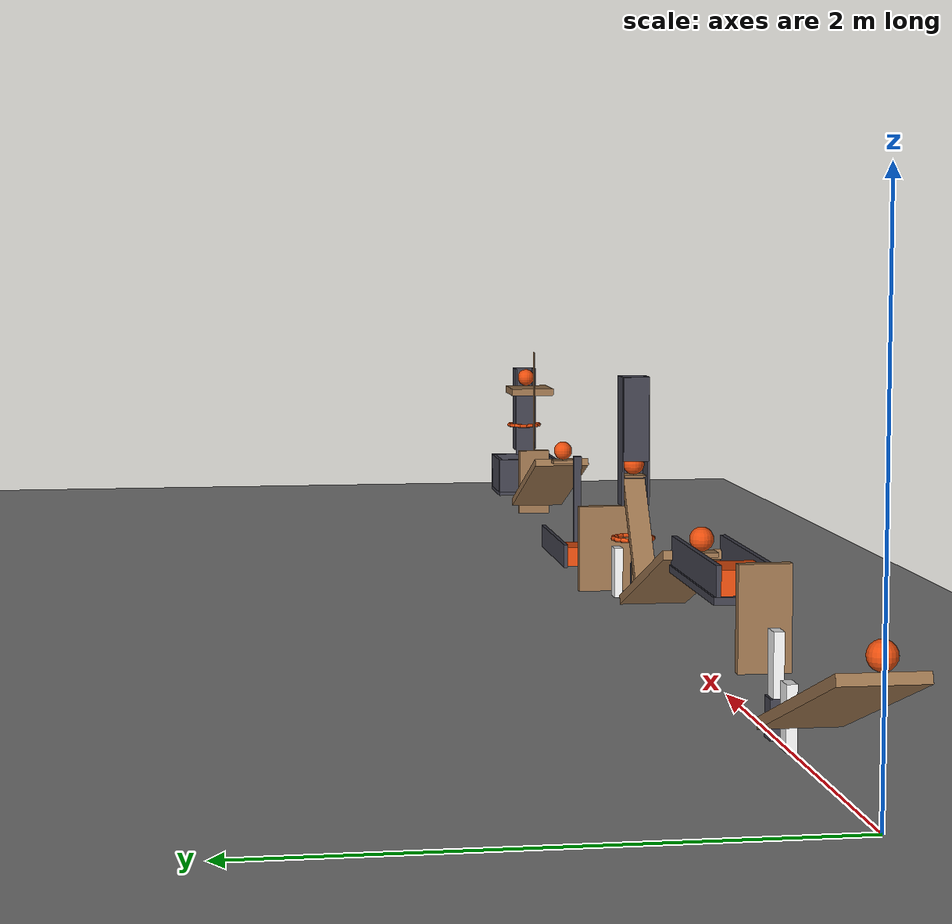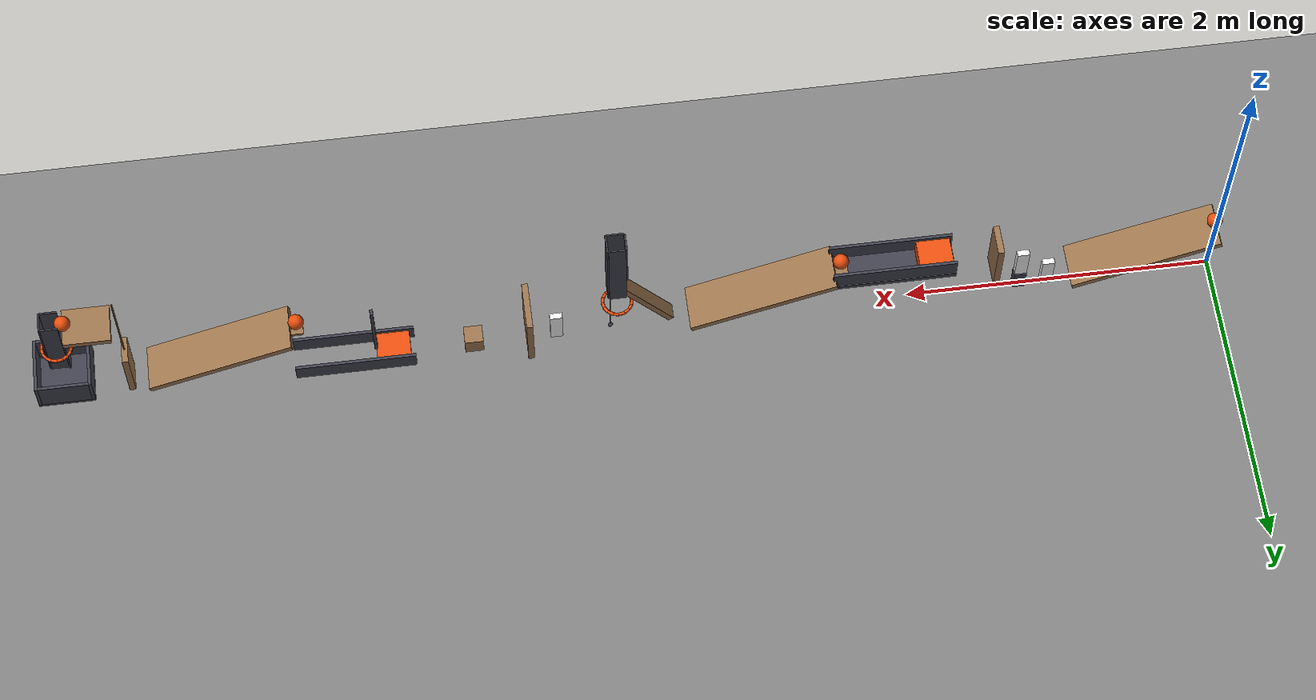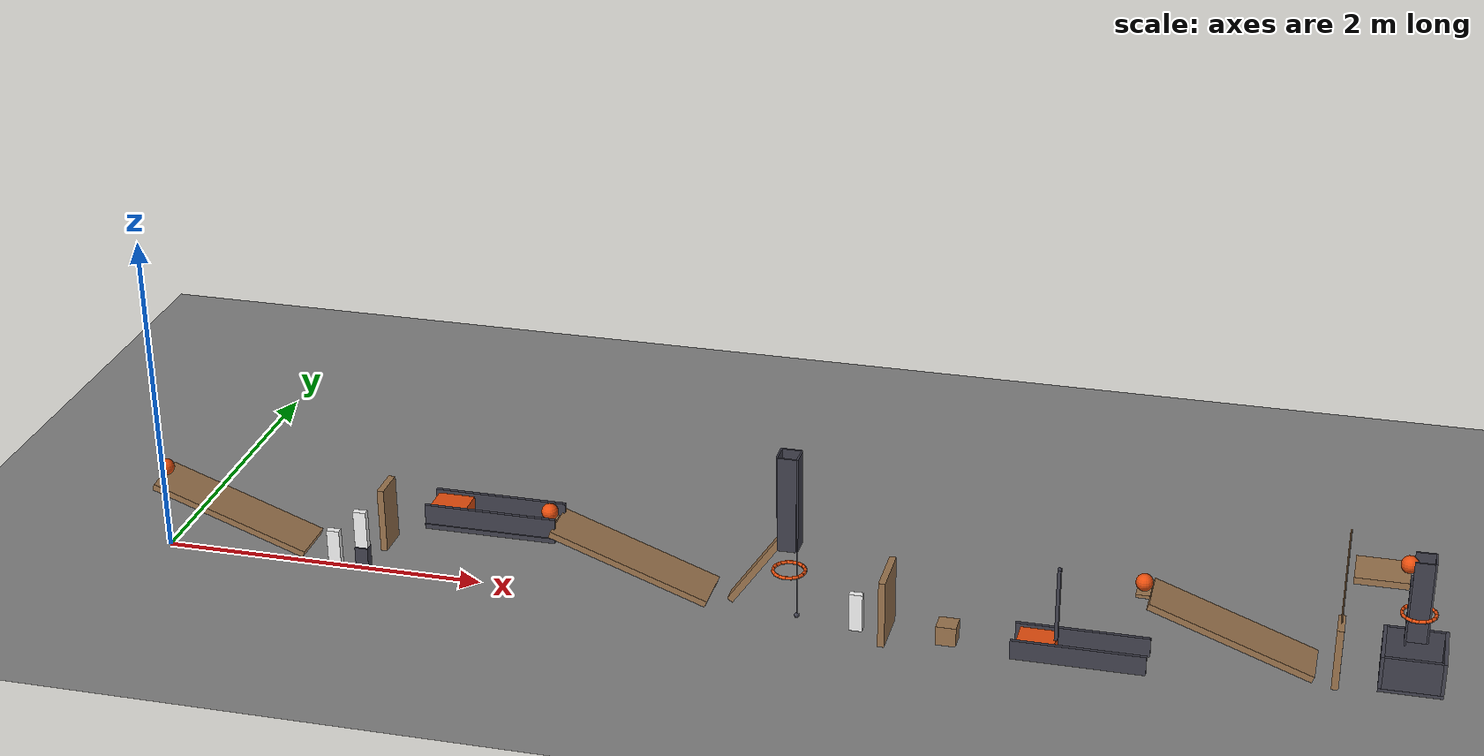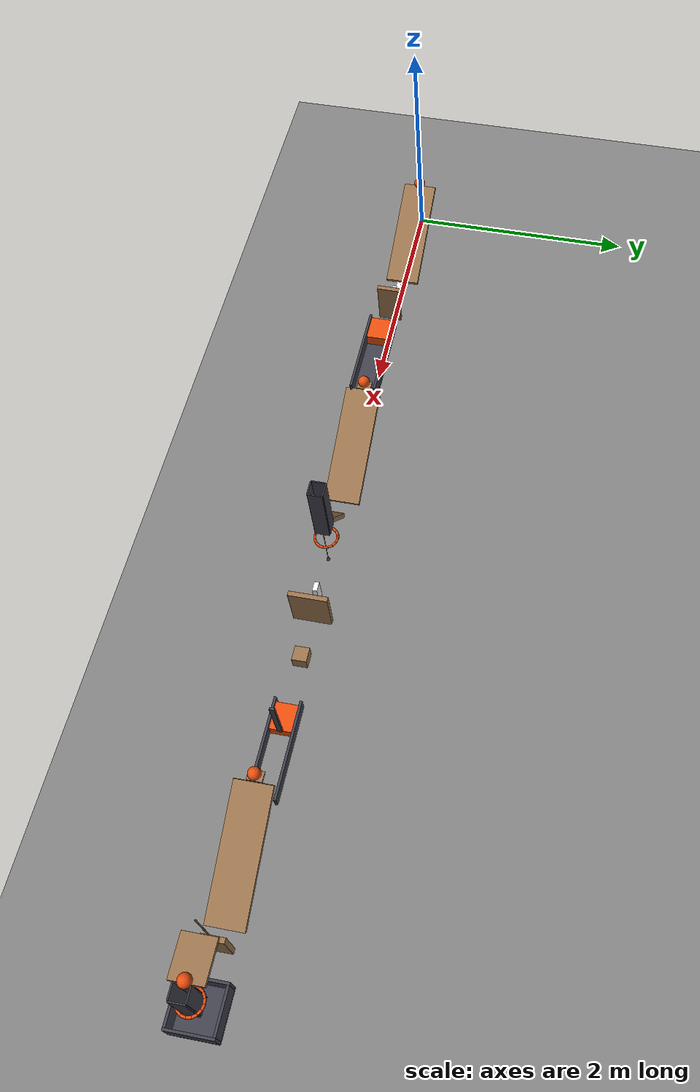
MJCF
<mujoco model="gravity_chain_with_guided_carts">
  <compiler angle="radian"/>
  <option timestep="0.002"/>
  <worldbody>
    <geom name="floor" type="plane" size="20 20 0.1" friction="0.7 0 0"/>
    <body name="ramp1">
      <geom name="ramp1" type="box" pos="0.469847 0 0.302216" size="0.5 0.15 0.02" euler="0 0.349066 0" friction="0.7 0 0" solref="0.01 1" rgba="0.6 0.45 0.3 1"/>
    </body>
    <body name="ball1" pos="0.0239414 0 0.539004">
      <freejoint/>
      <geom name="ball1" type="sphere" pos="0 0 0" size="0.05" mass="0.2" condim="6" friction="0.7 0 0" solref="0.01 1" rgba="0.9 0.3 0.05 1"/>
    </body>
    <body name="domino1" pos="1.07969 0 0.12">
      <freejoint/>
      <geom name="domino1" type="box" pos="0 0 0" size="0.04 0.02 0.12" mass="0.25" friction="0.7 0 0" solref="0.01 1" rgba="0.95 0.95 0.95 1"/>
    </body>
    <body name="domino2 support">
      <geom name="domino2 support" type="box" pos="1.25969 0 0.075" size="0.04 0.03 0.075" friction="0.7 0 0" solref="0.01 1" rgba="0.25 0.25 0.3 1"/>
    </body>
    <body name="domino2" pos="1.25969 0 0.27">
      <freejoint/>
      <geom name="domino2" type="box" pos="0 0 0" size="0.04 0.02 0.12" mass="0.25" friction="0.7 0 0" solref="0.01 1" rgba="0.95 0.95 0.95 1"/>
    </body>
    <body name="flap1" pos="1.43969 0 0.2">
      <joint name="flap1_hinge" type="hinge" pos="0 0 0" axis="0 1 0" limited="true" range="0 1.13446" damping="0.04"/>
      <geom name="flap1" type="box" pos="0 0 0.2" size="0.02 0.1 0.2" mass="0.3" friction="0.7 0 0" solref="0.01 1" rgba="0.6 0.45 0.3 1"/>
    </body>
    <body name="cart1 track">
      <geom name="cart1 track" type="box" pos="2.12 0 0.415" size="0.4 0.12 0.015" friction="0.7 0 0" solref="0.01 1" rgba="0.25 0.25 0.3 1"/>
    </body>
    <body name="cart1 left guide">
      <geom name="cart1 left guide" type="box" pos="2.12 0.102 0.49" size="0.4 0.01 0.06" friction="0.7 0 0" solref="0.01 1" rgba="0.25 0.25 0.3 1"/>
    </body>
    <body name="cart1 right guide">
      <geom name="cart1 right guide" type="box" pos="2.12 -0.102 0.49" size="0.4 0.01 0.06" friction="0.7 0 0" solref="0.01 1" rgba="0.25 0.25 0.3 1"/>
    </body>
    <body name="cart1" pos="1.85 0 0.48">
      <freejoint/>
      <geom name="cart1" type="box" pos="0 0 0" size="0.11 0.09 0.05" mass="0.5" friction="0.7 0 0" solref="0.01 1" rgba="0.9 0.3 0.05 1"/>
    </body>
    <body name="ramp2">
      <geom name="ramp2" type="box" pos="2.96838 0 0.302216" size="0.5 0.15 0.02" euler="0 0.349066 0" friction="0.7 0 0" solref="0.01 1" rgba="0.6 0.45 0.3 1"/>
    </body>
    <body name="ball2 starting pad">
      <geom name="ball2 starting pad" type="box" pos="2.45853 0 0.48202" size="0.04 0.06 0.01" friction="0.7 0 0" solref="0.01 1" rgba="0.6 0.45 0.3 1"/>
    </body>
    <body name="ball2" pos="2.45853 0 0.54202">
      <freejoint/>
      <geom name="ball2" type="sphere" pos="0 0 0" size="0.05" mass="0.2" condim="6" friction="0.7 0 0" solref="0.01 1" rgba="0.9 0.3 0.05 1"/>
    </body>
    <body name="lever1" pos="3.7303 0 0.365746">
      <joint name="lever1_hinge" type="hinge" pos="0 0 0" axis="0 1 0" limited="true" range="-0.785398 0" damping="0.04"/>
      <geom name="lever1" type="box" pos="0 0 -5e-07" size="0.3 0.05 0.02" euler="0 -0.959931 0" mass="0.499" friction="0.7 0 0" solref="0.01 1" rgba="0.6 0.45 0.3 1"/>
      <geom name="lever1 scoop" type="box" pos="0.172073 0 0.270745" size="0.045 0.05 0.005" mass="0.001" friction="0.7 0 0" solref="0.01 1" rgba="0.6 0.45 0.3 1"/>
    </body>
    <body name="ball3" pos="3.90237 0 0.691491">
      <freejoint/>
      <geom name="ball3" type="sphere" pos="0 0 0" size="0.05" mass="0.2" condim="6" friction="0.7 0 0" solref="0.01 1" rgba="0.9 0.3 0.05 1"/>
    </body>
    <body name="ball3 rear guide">
      <geom name="ball3 rear guide" type="box" pos="3.84237 0 0.905" size="0.005 0.06 0.195" friction="0.7 0 0" solref="0.01 1" rgba="0.25 0.25 0.3 1"/>
    </body>
    <body name="ball3 front guide">
      <geom name="ball3 front guide" type="box" pos="3.96237 0 0.8" size="0.005 0.06 0.3" friction="0.7 0 0" solref="0.01 1" rgba="0.25 0.25 0.3 1"/>
    </body>
    <body name="ball3 left guide">
      <geom name="ball3 left guide" type="box" pos="3.90237 0.06 0.8" size="0.055 0.005 0.3" friction="0.7 0 0" solref="0.01 1" rgba="0.25 0.25 0.3 1"/>
    </body>
    <body name="ball3 right guide">
      <geom name="ball3 right guide" type="box" pos="3.90237 -0.06 0.8" size="0.055 0.005 0.3" friction="0.7 0 0" solref="0.01 1" rgba="0.25 0.25 0.3 1"/>
    </body>
    <body name="ring1">
      <geom name="ring1_00" type="capsule" size="0.01" fromto="3.99737 0 0.341491 3.99014 0.0363549 0.341491" friction="0.7 0 0" solref="0.01 1" rgba="0.9 0.3 0.05 1"/>
      <geom name="ring1_01" type="capsule" size="0.01" fromto="3.99014 0.0363549 0.341491 3.96955 0.0671751 0.341491" friction="0.7 0 0" solref="0.01 1" rgba="0.9 0.3 0.05 1"/>
      <geom name="ring1_02" type="capsule" size="0.01" fromto="3.96955 0.0671751 0.341491 3.93873 0.0877686 0.341491" friction="0.7 0 0" solref="0.01 1" rgba="0.9 0.3 0.05 1"/>
      <geom name="ring1_03" type="capsule" size="0.01" fromto="3.93873 0.0877686 0.341491 3.90237 0.095 0.341491" friction="0.7 0 0" solref="0.01 1" rgba="0.9 0.3 0.05 1"/>
      <geom name="ring1_04" type="capsule" size="0.01" fromto="3.90237 0.095 0.341491 3.86602 0.0877686 0.341491" friction="0.7 0 0" solref="0.01 1" rgba="0.9 0.3 0.05 1"/>
      <geom name="ring1_05" type="capsule" size="0.01" fromto="3.86602 0.0877686 0.341491 3.8352 0.0671751 0.341491" friction="0.7 0 0" solref="0.01 1" rgba="0.9 0.3 0.05 1"/>
      <geom name="ring1_06" type="capsule" size="0.01" fromto="3.8352 0.0671751 0.341491 3.81461 0.0363549 0.341491" friction="0.7 0 0" solref="0.01 1" rgba="0.9 0.3 0.05 1"/>
      <geom name="ring1_07" type="capsule" size="0.01" fromto="3.81461 0.0363549 0.341491 3.80737 1.16341e-17 0.341491" friction="0.7 0 0" solref="0.01 1" rgba="0.9 0.3 0.05 1"/>
      <geom name="ring1_08" type="capsule" size="0.01" fromto="3.80737 1.16341e-17 0.341491 3.81461 -0.0363549 0.341491" friction="0.7 0 0" solref="0.01 1" rgba="0.9 0.3 0.05 1"/>
      <geom name="ring1_09" type="capsule" size="0.01" fromto="3.81461 -0.0363549 0.341491 3.8352 -0.0671751 0.341491" friction="0.7 0 0" solref="0.01 1" rgba="0.9 0.3 0.05 1"/>
      <geom name="ring1_10" type="capsule" size="0.01" fromto="3.8352 -0.0671751 0.341491 3.86602 -0.0877686 0.341491" friction="0.7 0 0" solref="0.01 1" rgba="0.9 0.3 0.05 1"/>
      <geom name="ring1_11" type="capsule" size="0.01" fromto="3.86602 -0.0877686 0.341491 3.90237 -0.095 0.341491" friction="0.7 0 0" solref="0.01 1" rgba="0.9 0.3 0.05 1"/>
      <geom name="ring1_12" type="capsule" size="0.01" fromto="3.90237 -0.095 0.341491 3.93873 -0.0877686 0.341491" friction="0.7 0 0" solref="0.01 1" rgba="0.9 0.3 0.05 1"/>
      <geom name="ring1_13" type="capsule" size="0.01" fromto="3.93873 -0.0877686 0.341491 3.96955 -0.0671751 0.341491" friction="0.7 0 0" solref="0.01 1" rgba="0.9 0.3 0.05 1"/>
      <geom name="ring1_14" type="capsule" size="0.01" fromto="3.96955 -0.0671751 0.341491 3.99014 -0.0363549 0.341491" friction="0.7 0 0" solref="0.01 1" rgba="0.9 0.3 0.05 1"/>
      <geom name="ring1_15" type="capsule" size="0.01" fromto="3.99014 -0.0363549 0.341491 3.99737 -2.32683e-17 0.341491" friction="0.7 0 0" solref="0.01 1" rgba="0.9 0.3 0.05 1"/>
    </body>
    <body name="pendulum1" pos="3.94834 0 0.545529">
      <joint name="pendulum_hinge" type="hinge" pos="0 0 0" axis="0 1 0" limited="true" range="-0.698132 0" damping="0.04"/>
      <geom name="pendulum1_bob" type="sphere" pos="0 0 -0.5" size="0.015" mass="0.34" friction="0.7 0 0" solref="0.01 1" rgba="0.25 0.25 0.3 1"/>
      <geom name="pendulum1_rod" type="capsule" size="0.0025" fromto="0 0 0 0 0 -0.485" mass="0.01" friction="0.7 0 0" solref="0.01 1" rgba="0.25 0.25 0.3 1"/>
    </body>
    <body name="domino3" pos="4.30193 0 0.12">
      <freejoint/>
      <geom name="domino3" type="box" pos="0 0 0" size="0.04 0.02 0.12" mass="0.25" friction="0.7 0 0" solref="0.01 1" rgba="0.95 0.95 0.95 1"/>
    </body>
    <body name="door1" pos="4.48193 0 0">
      <joint name="door1_hinge" type="hinge" pos="0 0 0" axis="0 1 0" limited="true" range="0 1.22173" damping="0.04"/>
      <geom name="door1" type="box" pos="0 0 0.21" size="0.02 0.16 0.21" mass="0.45" friction="0.7 0 0" solref="0.01 1" rgba="0.6 0.45 0.3 1"/>
    </body>
    <body name="block1" pos="4.84193 0 0.06">
      <freejoint/>
      <geom name="block1" type="box" pos="0 0 0" size="0.06 0.06 0.06" mass="0.35" friction="0.7 0 0" solref="0.01 1" rgba="0.6 0.45 0.3 1"/>
    </body>
    <body name="cart2 left guide">
      <geom name="cart2 left guide" type="box" pos="5.61193 0.102 0.06" size="0.39 0.01 0.06" friction="0.7 0 0" solref="0.01 1" rgba="0.25 0.25 0.3 1"/>
    </body>
    <body name="cart2 right guide">
      <geom name="cart2 right guide" type="box" pos="5.61193 -0.102 0.06" size="0.39 0.01 0.06" friction="0.7 0 0" solref="0.01 1" rgba="0.25 0.25 0.3 1"/>
    </body>
    <body name="cart2" pos="5.36193 0 0.05">
      <freejoint/>
      <geom name="cart2" type="box" pos="0 0 0" size="0.11 0.09 0.05" mass="0.499" friction="0.7 0 0" solref="0.01 1" rgba="0.9 0.3 0.05 1"/>
      <geom name="cart2 pusher" type="box" pos="0.11 0 0.28" size="0.01 0.02 0.23" mass="0.001" friction="0.7 0 0" solref="0.01 1" rgba="0.25 0.25 0.3 1"/>
    </body>
    <body name="ramp3">
      <geom name="ramp3" type="box" pos="6.46178 0 0.302216" size="0.5 0.15 0.02" euler="0 0.349066 0" friction="0.7 0 0" solref="0.01 1" rgba="0.6 0.45 0.3 1"/>
    </body>
    <body name="ball4 starting pad">
      <geom name="ball4 starting pad" type="box" pos="5.95193 0 0.48202" size="0.04 0.06 0.01" friction="0.7 0 0" solref="0.01 1" rgba="0.6 0.45 0.3 1"/>
    </body>
    <body name="ball4" pos="5.95193 0 0.54202">
      <freejoint/>
      <geom name="ball4" type="sphere" pos="0 0 0" size="0.05" mass="0.2" condim="6" friction="0.7 0 0" solref="0.01 1" rgba="0.9 0.3 0.05 1"/>
    </body>
    <body name="flap2" pos="7.05163 0 0.05">
      <joint name="flap2_hinge" type="hinge" pos="0 0 0" axis="0 1 0" limited="true" range="0 1.0472" damping="0.04"/>
      <geom name="flap2" type="box" pos="0 0 0.19" size="0.02 0.09 0.19" mass="0.278" friction="0.7 0 0" solref="0.01 1" rgba="0.6 0.45 0.3 1"/>
      <geom name="flap2 striker" type="capsule" size="0.005" fromto="0 0 0.38 0 0 0.97" mass="0.002" friction="0.7 0 0" solref="0.01 1" rgba="0.6 0.45 0.3 1"/>
    </body>
    <body name="shelf1">
      <geom name="shelf1" type="box" pos="7.24163 0 0.78" size="0.15 0.125 0.02" friction="0.7 0 0" solref="0.01 1" rgba="0.6 0.45 0.3 1"/>
    </body>
    <body name="ball5" pos="7.38163 0 0.85">
      <freejoint/>
      <geom name="ball5" type="sphere" pos="0 0 0" size="0.05" mass="0.2" condim="6" friction="0.7 0 0" solref="0.01 1" rgba="0.9 0.3 0.05 1"/>
    </body>
    <body name="ball5 front guide">
      <geom name="ball5 front guide" type="box" pos="7.52163 0 0.65" size="0.005 0.06 0.25" friction="0.7 0 0" solref="0.01 1" rgba="0.25 0.25 0.3 1"/>
    </body>
    <body name="ball5 rear guide">
      <geom name="ball5 rear guide" type="box" pos="7.40163 0 0.56" size="0.005 0.06 0.19" friction="0.7 0 0" solref="0.01 1" rgba="0.25 0.25 0.3 1"/>
    </body>
    <body name="ball5 left guide">
      <geom name="ball5 left guide" type="box" pos="7.46163 0.06 0.65" size="0.055 0.005 0.25" friction="0.7 0 0" solref="0.01 1" rgba="0.25 0.25 0.3 1"/>
    </body>
    <body name="ball5 right guide">
      <geom name="ball5 right guide" type="box" pos="7.46163 -0.06 0.65" size="0.055 0.005 0.25" friction="0.7 0 0" solref="0.01 1" rgba="0.25 0.25 0.3 1"/>
    </body>
    <body name="ring2">
      <geom name="ring2_00" type="capsule" size="0.01" fromto="7.55663 0 0.55 7.5494 0.0363549 0.55" friction="0.7 0 0" solref="0.01 1" rgba="0.9 0.3 0.05 1"/>
      <geom name="ring2_01" type="capsule" size="0.01" fromto="7.5494 0.0363549 0.55 7.5288 0.0671751 0.55" friction="0.7 0 0" solref="0.01 1" rgba="0.9 0.3 0.05 1"/>
      <geom name="ring2_02" type="capsule" size="0.01" fromto="7.5288 0.0671751 0.55 7.49798 0.0877686 0.55" friction="0.7 0 0" solref="0.01 1" rgba="0.9 0.3 0.05 1"/>
      <geom name="ring2_03" type="capsule" size="0.01" fromto="7.49798 0.0877686 0.55 7.46163 0.095 0.55" friction="0.7 0 0" solref="0.01 1" rgba="0.9 0.3 0.05 1"/>
      <geom name="ring2_04" type="capsule" size="0.01" fromto="7.46163 0.095 0.55 7.42527 0.0877686 0.55" friction="0.7 0 0" solref="0.01 1" rgba="0.9 0.3 0.05 1"/>
      <geom name="ring2_05" type="capsule" size="0.01" fromto="7.42527 0.0877686 0.55 7.39445 0.0671751 0.55" friction="0.7 0 0" solref="0.01 1" rgba="0.9 0.3 0.05 1"/>
      <geom name="ring2_06" type="capsule" size="0.01" fromto="7.39445 0.0671751 0.55 7.37386 0.0363549 0.55" friction="0.7 0 0" solref="0.01 1" rgba="0.9 0.3 0.05 1"/>
      <geom name="ring2_07" type="capsule" size="0.01" fromto="7.37386 0.0363549 0.55 7.36663 1.16341e-17 0.55" friction="0.7 0 0" solref="0.01 1" rgba="0.9 0.3 0.05 1"/>
      <geom name="ring2_08" type="capsule" size="0.01" fromto="7.36663 1.16341e-17 0.55 7.37386 -0.0363549 0.55" friction="0.7 0 0" solref="0.01 1" rgba="0.9 0.3 0.05 1"/>
      <geom name="ring2_09" type="capsule" size="0.01" fromto="7.37386 -0.0363549 0.55 7.39445 -0.0671751 0.55" friction="0.7 0 0" solref="0.01 1" rgba="0.9 0.3 0.05 1"/>
      <geom name="ring2_10" type="capsule" size="0.01" fromto="7.39445 -0.0671751 0.55 7.42527 -0.0877686 0.55" friction="0.7 0 0" solref="0.01 1" rgba="0.9 0.3 0.05 1"/>
      <geom name="ring2_11" type="capsule" size="0.01" fromto="7.42527 -0.0877686 0.55 7.46163 -0.095 0.55" friction="0.7 0 0" solref="0.01 1" rgba="0.9 0.3 0.05 1"/>
      <geom name="ring2_12" type="capsule" size="0.01" fromto="7.46163 -0.095 0.55 7.49798 -0.0877686 0.55" friction="0.7 0 0" solref="0.01 1" rgba="0.9 0.3 0.05 1"/>
      <geom name="ring2_13" type="capsule" size="0.01" fromto="7.49798 -0.0877686 0.55 7.5288 -0.0671751 0.55" friction="0.7 0 0" solref="0.01 1" rgba="0.9 0.3 0.05 1"/>
      <geom name="ring2_14" type="capsule" size="0.01" fromto="7.5288 -0.0671751 0.55 7.5494 -0.0363549 0.55" friction="0.7 0 0" solref="0.01 1" rgba="0.9 0.3 0.05 1"/>
      <geom name="ring2_15" type="capsule" size="0.01" fromto="7.5494 -0.0363549 0.55 7.55663 -2.32683e-17 0.55" friction="0.7 0 0" solref="0.01 1" rgba="0.9 0.3 0.05 1"/>
    </body>
    <body name="bin1">
      <geom name="bin1_base" type="box" pos="7.46163 0 0.14" size="0.18 0.18 0.01" friction="0.7 0 0" solref="0.01 1" rgba="0.25 0.25 0.3 1"/>
      <geom name="bin1_near_wall" type="box" pos="7.29163 0 0.25" size="0.01 0.18 0.1" friction="0.7 0 0" solref="0.01 1" rgba="0.25 0.25 0.3 1"/>
      <geom name="bin1_far_wall" type="box" pos="7.63163 0 0.25" size="0.01 0.18 0.1" friction="0.7 0 0" solref="0.01 1" rgba="0.25 0.25 0.3 1"/>
      <geom name="bin1_left_wall" type="box" pos="7.46163 0.17 0.25" size="0.16 0.01 0.1" friction="0.7 0 0" solref="0.01 1" rgba="0.25 0.25 0.3 1"/>
      <geom name="bin1_right_wall" type="box" pos="7.46163 -0.17 0.25" size="0.16 0.01 0.1" friction="0.7 0 0" solref="0.01 1" rgba="0.25 0.25 0.3 1"/>
    </body>
  </worldbody>
  <keyframe>
    <key name="start" qpos="0.0239414 0 0.539004 1 0 0 0 1.07969 0 0.12 1 0 0 0 1.25969 0 0.27 1 0 0 0 0 1.85 0 0.48 1 0 0 0 2.45853 0 0.54202 1 0 0 0 0 3.90237 0 0.691491 1 0 0 0 0 4.30193 0 0.12 1 0 0 0 0 4.84193 0 0.06 1 0 0 0 5.36193 0 0.05 1 0 0 0 5.95193 0 0.54202 1 0 0 0 0 7.38163 0 0.85 1 0 0 0" qvel="0 0 0 0 0 0 0 0 0 0 0 0 0 0 0 0 0 0 0 0 0 0 0 0 0 0 0 0 0 0 0 0 0 0 0 0 0 0 0 0 0 0 0 0 0 0 0 0 0 0 0 0 0 0 0 0 0 0 0 0 0 0 0 0 0 0 0 0 0 0 0"/>
  </keyframe>
</mujoco>
